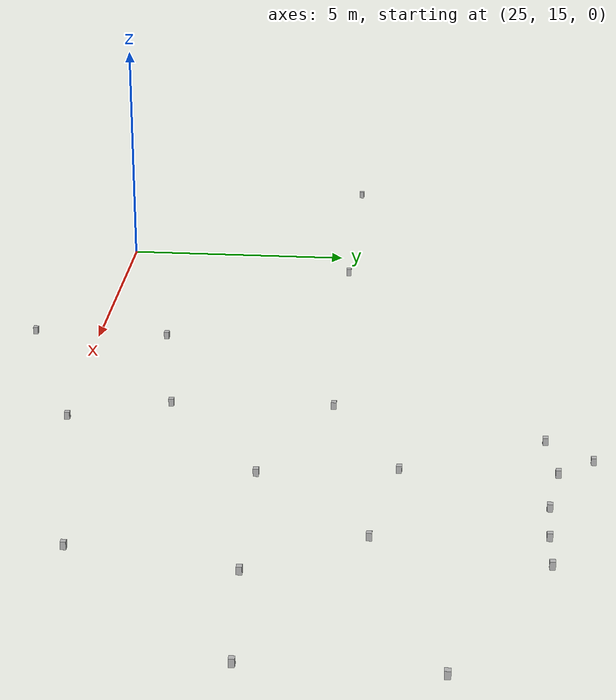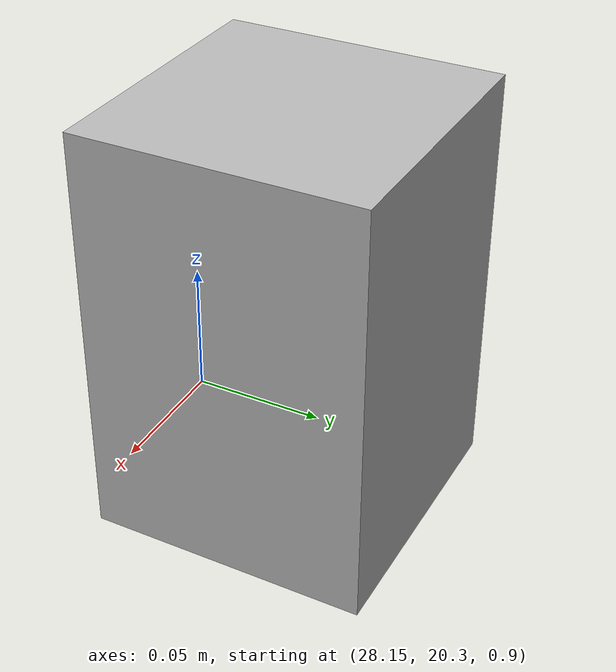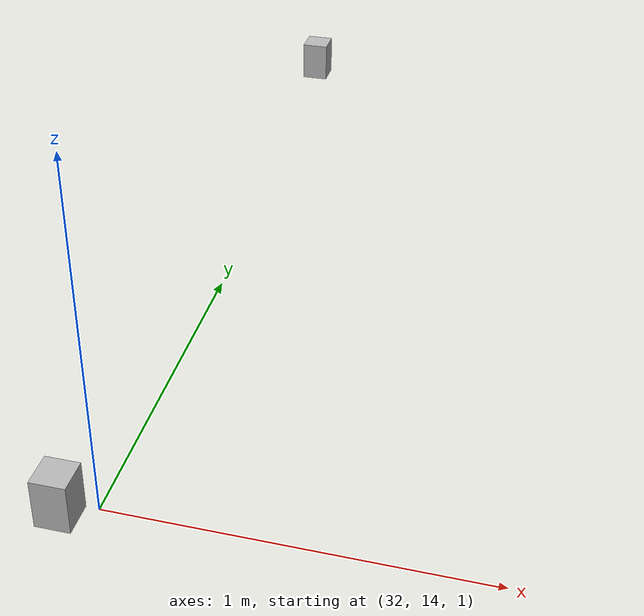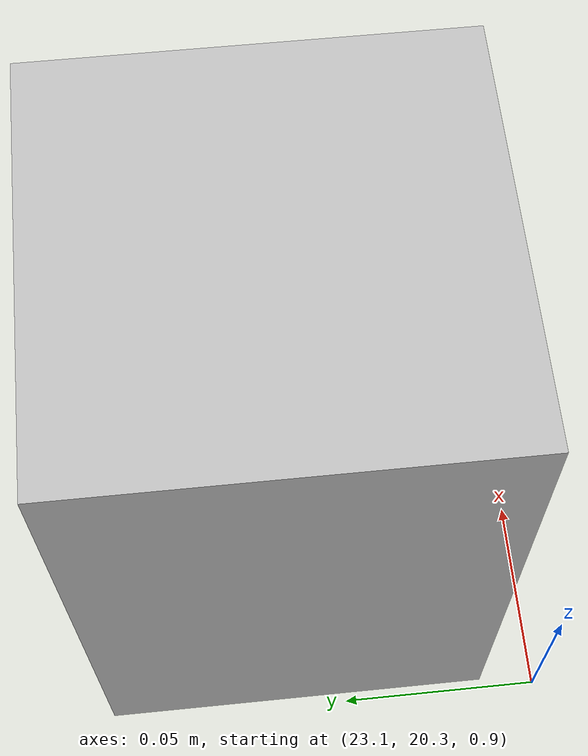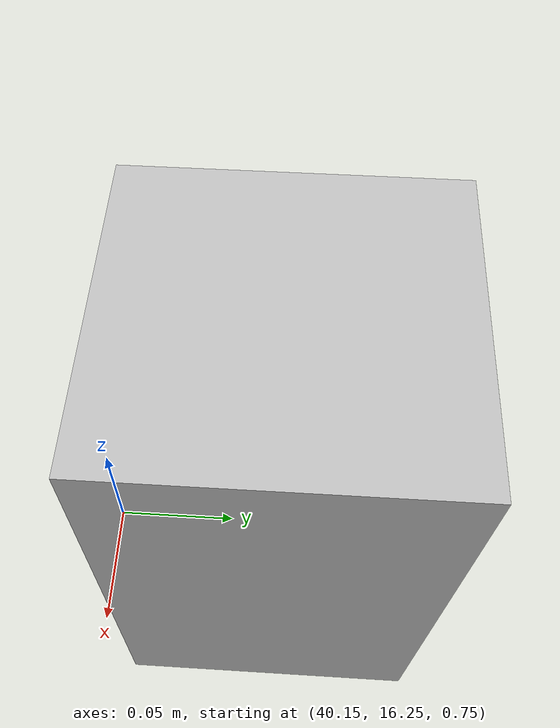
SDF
<sdf version="1.6">
 <world name="world">
  <model name="ground_plane">
   <static>1</static>
   <link name="link">
    <collision name="collision">
     <geometry><plane><normal>0 0 1</normal><size>100 100</size></plane></geometry>
     <surface><friction><ode><mu>100</mu><mu2>50</mu2></ode></friction></surface>
    </collision>
    <velocity_decay><linear>0</linear><angular>0</angular></velocity_decay>
   </link>
  </model>
  <physics name="default_physics" default="0" type="ode">
   <max_step_size>0.001</max_step_size>
   <real_time_factor>1</real_time_factor>
   <real_time_update_rate>1000</real_time_update_rate>
  </physics>
  <scene><ambient>0.4 0.4 0.4 1</ambient><background>0.7 0.7 0.7 1</background><shadows>1</shadows></scene>
  <gravity>0 0 -9.8</gravity>
  <magnetic_field>6e-06 2.3e-05 -4.2e-05</magnetic_field>
  <atmosphere type="adiabatic"/>
  <spherical_coordinates>
   <surface_model>EARTH_WGS84</surface_model>
   <latitude_deg>0</latitude_deg>
   <longitude_deg>0</longitude_deg>
   <elevation>0</elevation>
   <heading_deg>0</heading_deg>
  </spherical_coordinates>
  <light name="user_point_light_0" type="point">
   <pose>37.122 19.3882 1 0 -0 0</pose>
   <diffuse>0.5 0.5 0.5 1</diffuse>
   <specular>0.1 0.1 0.1 1</specular>
   <attenuation>
    <range>20</range>
    <constant>0.5</constant>
    <linear>0.01</linear>
    <quadratic>0.001</quadratic>
   </attenuation>
   <cast_shadows>0</cast_shadows>
   <direction>0 0 -1</direction>
  </light>
  <model name="tea_box_0">
   <link name="link">
    <pose>0 0 0.075 0 -0 0</pose>
    <inertial>
     <mass>0.39</mass>
     <inertia>
      <ixx>0.000264062</ixx>
      <ixy>0</ixy>
      <ixz>0</ixz>
      <iyy>0.000264062</iyy>
      <iyz>0</iyz>
      <izz>0.0001625</izz>
     </inertia>
    </inertial>
    <visual name="visual">
     <geometry><box><size>0.1 0.1 0.15</size></box></geometry>
     <material>
      <script>
       <uri>model://tea_box/materials/scripts</uri>
       <uri>model://tea_box/materials/textures</uri>
       <name>tea_pat</name>
      </script>
     </material>
    </visual>
    <collision name="collision"><geometry><box><size>0.1 0.1 0.15</size></box></geometry></collision>
   </link>
   <pose>37.3782 19.2551 0.774996 -1.6e-05 2e-06 -4.4e-05</pose>
  </model>
  <model name="tea_box_0_clone_clone_0">
   <link name="link">
    <pose>0 0 0.075 0 -0 0</pose>
    <inertial>
     <mass>0.39</mass>
     <inertia>
      <ixx>0.000264062</ixx>
      <ixy>0</ixy>
      <ixz>0</ixz>
      <iyy>0.000264062</iyy>
      <iyz>0</iyz>
      <izz>0.0001625</izz>
     </inertia>
    </inertial>
    <visual name="visual">
     <geometry><box><size>0.1 0.1 0.15</size></box></geometry>
     <material>
      <script>
       <uri>model://tea_box/materials/scripts</uri>
       <uri>model://tea_box/materials/textures</uri>
       <name>tea_pat</name>
      </script>
     </material>
    </visual>
    <collision name="collision"><geometry><box><size>0.1 0.1 0.15</size></box></geometry></collision>
   </link>
   <pose>28.1753 20.3532 0.890216 2e-05 -3.6e-05 -0.004426</pose>
  </model>
  <model name="tea_box_0_clone_clone_0_clone">
   <link name="link">
    <pose>0 0 0.075 0 -0 0</pose>
    <inertial>
     <mass>0.39</mass>
     <inertia>
      <ixx>0.000264062</ixx>
      <ixy>0</ixy>
      <ixz>0</ixz>
      <iyy>0.000264062</iyy>
      <iyz>0</iyz>
      <izz>0.0001625</izz>
     </inertia>
    </inertial>
    <visual name="visual">
     <geometry><box><size>0.1 0.1 0.15</size></box></geometry>
     <material>
      <script>
       <uri>model://tea_box/materials/scripts</uri>
       <uri>model://tea_box/materials/textures</uri>
       <name>tea_pat</name>
      </script>
     </material>
    </visual>
    <collision name="collision"><geometry><box><size>0.1 0.1 0.15</size></box></geometry></collision>
   </link>
   <pose>23.155 20.3624 0.890217 -1e-05 1e-05 -0.000786</pose>
  </model>
  <model name="tea_box_1">
   <link name="link">
    <pose>0 0 0.075 0 -0 0</pose>
    <inertial>
     <mass>0.39</mass>
     <inertia>
      <ixx>0.000264062</ixx>
      <ixy>0</ixy>
      <ixz>0</ixz>
      <iyy>0.000264062</iyy>
      <iyz>0</iyz>
      <izz>0.0001625</izz>
     </inertia>
    </inertial>
    <visual name="visual">
     <geometry><box><size>0.1 0.1 0.15</size></box></geometry>
     <material>
      <script>
       <uri>model://tea_box/materials/scripts</uri>
       <uri>model://tea_box/materials/textures</uri>
       <name>tea_pat</name>
      </script>
     </material>
    </visual>
    <collision name="collision"><geometry><box><size>0.1 0.1 0.15</size></box></geometry></collision>
   </link>
   <pose>31.8584 14.0561 0.884765 -0.014692 -5e-06 0.000756</pose>
  </model>
  <model name="tea_box_1_clone">
   <link name="link">
    <pose>0 0 0.075 0 -0 0</pose>
    <inertial>
     <mass>0.39</mass>
     <inertia>
      <ixx>0.000264062</ixx>
      <ixy>0</ixy>
      <ixz>0</ixz>
      <iyy>0.000264062</iyy>
      <iyz>0</iyz>
      <izz>0.0001625</izz>
     </inertia>
    </inertial>
    <visual name="visual">
     <geometry><box><size>0.1 0.1 0.15</size></box></geometry>
     <material>
      <script>
       <uri>model://tea_box/materials/scripts</uri>
       <uri>model://tea_box/materials/textures</uri>
       <name>tea_pat</name>
      </script>
     </material>
    </visual>
    <collision name="collision"><geometry><box><size>0.1 0.1 0.15</size></box></geometry></collision>
   </link>
   <pose>31.8687 16.8046 0.884729 -0.014726 -3e-06 -0.000762</pose>
  </model>
  <model name="tea_box_1_clone_0">
   <link name="link">
    <pose>0 0 0.075 0 -0 0</pose>
    <inertial>
     <mass>0.39</mass>
     <inertia>
      <ixx>0.000264062</ixx>
      <ixy>0</ixy>
      <ixz>0</ixz>
      <iyy>0.000264062</iyy>
      <iyz>0</iyz>
      <izz>0.0001625</izz>
     </inertia>
    </inertial>
    <visual name="visual">
     <geometry><box><size>0.1 0.1 0.15</size></box></geometry>
     <material>
      <script>
       <uri>model://tea_box/materials/scripts</uri>
       <uri>model://tea_box/materials/textures</uri>
       <name>tea_pat</name>
      </script>
     </material>
    </visual>
    <collision name="collision"><geometry><box><size>0.1 0.1 0.15</size></box></geometry></collision>
   </link>
   <pose>37.2268 24.6506 0.909 6e-06 1e-06 1.8e-05</pose>
  </model>
  <model name="tea_box_1_clone_1">
   <link name="link">
    <pose>0 0 0.075 0 -0 0</pose>
    <inertial>
     <mass>0.39</mass>
     <inertia>
      <ixx>0.000264062</ixx>
      <ixy>0</ixy>
      <ixz>0</ixz>
      <iyy>0.000264062</iyy>
      <iyz>0</iyz>
      <izz>0.0001625</izz>
     </inertia>
    </inertial>
    <visual name="visual">
     <geometry><box><size>0.1 0.1 0.15</size></box></geometry>
     <material>
      <script>
       <uri>model://tea_box/materials/scripts</uri>
       <uri>model://tea_box/materials/textures</uri>
       <name>tea_pat</name>
      </script>
     </material>
    </visual>
    <collision name="collision"><geometry><box><size>0.1 0.1 0.15</size></box></geometry></collision>
   </link>
   <pose>35 25.4489 0 -5e-06 -1.6e-05 -2e-06</pose>
  </model>
  <model name="tea_box_1_clone_0_clone">
   <link name="link">
    <pose>0 0 0.075 0 -0 0</pose>
    <inertial>
     <mass>0.39</mass>
     <inertia>
      <ixx>0.000264062</ixx>
      <ixy>0</ixy>
      <ixz>0</ixz>
      <iyy>0.000264062</iyy>
      <iyz>0</iyz>
      <izz>0.0001625</izz>
     </inertia>
    </inertial>
    <visual name="visual">
     <geometry><box><size>0.1 0.1 0.15</size></box></geometry>
     <material>
      <script>
       <uri>model://tea_box/materials/scripts</uri>
       <uri>model://tea_box/materials/textures</uri>
       <name>tea_pat</name>
      </script>
     </material>
    </visual>
    <collision name="collision"><geometry><box><size>0.1 0.1 0.15</size></box></geometry></collision>
   </link>
   <pose>36.0009 24.4606 0.909 -1e-06 4e-06 -0.000123</pose>
  </model>
  <model name="tea_box_1_clone_0_clone_0">
   <link name="link">
    <pose>0 0 0.075 0 -0 0</pose>
    <inertial>
     <mass>0.39</mass>
     <inertia>
      <ixx>0.000264062</ixx>
      <ixy>0</ixy>
      <ixz>0</ixz>
      <iyy>0.000264062</iyy>
      <iyz>0</iyz>
      <izz>0.0001625</izz>
     </inertia>
    </inertial>
    <visual name="visual">
     <geometry><box><size>0.1 0.1 0.15</size></box></geometry>
     <material>
      <script>
       <uri>model://tea_box/materials/scripts</uri>
       <uri>model://tea_box/materials/textures</uri>
       <name>tea_pat</name>
      </script>
     </material>
    </visual>
    <collision name="collision"><geometry><box><size>0.1 0.1 0.15</size></box></geometry></collision>
   </link>
   <pose>38.4516 24.4582 0.909 -1e-06 4e-06 -0.000123</pose>
  </model>
  <model name="tea_box_1_clone_0_clone_1">
   <link name="link">
    <pose>0 0 0.075 0 -0 0</pose>
    <inertial>
     <mass>0.39</mass>
     <inertia>
      <ixx>0.000264062</ixx>
      <ixy>0</ixy>
      <ixz>0</ixz>
      <iyy>0.000264062</iyy>
      <iyz>0</iyz>
      <izz>0.0001625</izz>
     </inertia>
    </inertial>
    <visual name="visual">
     <geometry><box><size>0.1 0.1 0.15</size></box></geometry>
     <material>
      <script>
       <uri>model://tea_box/materials/scripts</uri>
       <uri>model://tea_box/materials/textures</uri>
       <name>tea_pat</name>
      </script>
     </material>
    </visual>
    <collision name="collision"><geometry><box><size>0.1 0.1 0.15</size></box></geometry></collision>
   </link>
   <pose>39.4439 24.4207 0.909 -1e-06 4e-06 -0.000123</pose>
  </model>
  <model name="tea_box_1_clone_0_clone_2">
   <link name="link">
    <pose>0 0 0.075 0 -0 0</pose>
    <inertial>
     <mass>0.39</mass>
     <inertia>
      <ixx>0.000264062</ixx>
      <ixy>0</ixy>
      <ixz>0</ixz>
      <iyy>0.000264062</iyy>
      <iyz>0</iyz>
      <izz>0.0001625</izz>
     </inertia>
    </inertial>
    <visual name="visual">
     <geometry><box><size>0.1 0.1 0.15</size></box></geometry>
     <material>
      <script>
       <uri>model://tea_box/materials/scripts</uri>
       <uri>model://tea_box/materials/textures</uri>
       <name>tea_pat</name>
      </script>
     </material>
    </visual>
    <collision name="collision"><geometry><box><size>0.1 0.1 0.15</size></box></geometry></collision>
   </link>
   <pose>40.3473 24.4329 0.909 6e-06 1e-06 2.7e-05</pose>
  </model>
  <model name="tea_box_1_clone_0_clone_2_clone">
   <link name="link">
    <pose>0 0 0.075 0 -0 0</pose>
    <inertial>
     <mass>0.39</mass>
     <inertia>
      <ixx>0.000264062</ixx>
      <ixy>0</ixy>
      <ixz>0</ixz>
      <iyy>0.000264062</iyy>
      <iyz>0</iyz>
      <izz>0.0001625</izz>
     </inertia>
    </inertial>
    <visual name="visual">
     <geometry><box><size>0.1 0.1 0.15</size></box></geometry>
     <material>
      <script>
       <uri>model://tea_box/materials/scripts</uri>
       <uri>model://tea_box/materials/textures</uri>
       <name>tea_pat</name>
      </script>
     </material>
    </visual>
    <collision name="collision"><geometry><box><size>0.1 0.1 0.15</size></box></geometry></collision>
   </link>
   <pose>43.494 19.5521 0.886794 -1.5e-05 1e-06 -0.001157</pose>
  </model>
  <model name="tea_box_1_clone_0_clone_2_clone_clone">
   <link name="link">
    <pose>0 0 0.075 0 -0 0</pose>
    <inertial>
     <mass>0.39</mass>
     <inertia>
      <ixx>0.000264062</ixx>
      <ixy>0</ixy>
      <ixz>0</ixz>
      <iyy>0.000264062</iyy>
      <iyz>0</iyz>
      <izz>0.0001625</izz>
     </inertia>
    </inertial>
    <visual name="visual">
     <geometry><box><size>0.1 0.1 0.15</size></box></geometry>
     <material>
      <script>
       <uri>model://tea_box/materials/scripts</uri>
       <uri>model://tea_box/materials/textures</uri>
       <name>tea_pat</name>
      </script>
     </material>
    </visual>
    <collision name="collision"><geometry><box><size>0.1 0.1 0.15</size></box></geometry></collision>
   </link>
   <pose>43.5343 22.7781 0.886795 -1.4e-05 1.5e-05 0.013747</pose>
  </model>
  <model name="tea_box_0_clone">
   <link name="link">
    <pose>0 0 0.075 0 -0 0</pose>
    <inertial>
     <mass>0.39</mass>
     <inertia>
      <ixx>0.000264062</ixx>
      <ixy>0</ixy>
      <ixz>0</ixz>
      <iyy>0.000264062</iyy>
      <iyz>0</iyz>
      <izz>0.0001625</izz>
     </inertia>
    </inertial>
    <visual name="visual">
     <geometry><box><size>0.1 0.1 0.15</size></box></geometry>
     <material>
      <script>
       <uri>model://tea_box/materials/scripts</uri>
       <uri>model://tea_box/materials/textures</uri>
       <name>tea_pat</name>
      </script>
     </material>
    </visual>
    <collision name="collision"><geometry><box><size>0.1 0.1 0.15</size></box></geometry></collision>
   </link>
   <pose>34.6 20.4636 0.775 -1.6e-05 2e-06 -4.4e-05</pose>
  </model>
  <model name="tea_box_0_clone_0">
   <link name="link">
    <pose>0 0 0.075 0 -0 0</pose>
    <inertial>
     <mass>0.39</mass>
     <inertia>
      <ixx>0.000264062</ixx>
      <ixy>0</ixy>
      <ixz>0</ixz>
      <iyy>0.000264062</iyy>
      <iyz>0</iyz>
      <izz>0.0001625</izz>
     </inertia>
    </inertial>
    <visual name="visual">
     <geometry><box><size>0.1 0.1 0.15</size></box></geometry>
     <material>
      <script>
       <uri>model://tea_box/materials/scripts</uri>
       <uri>model://tea_box/materials/textures</uri>
       <name>tea_pat</name>
      </script>
     </material>
    </visual>
    <collision name="collision"><geometry><box><size>0.1 0.1 0.15</size></box></geometry></collision>
   </link>
   <pose>37.0526 21.8128 0.775 -1.6e-05 2e-06 -4.4e-05</pose>
  </model>
  <model name="tea_box_0_clone_1">
   <link name="link">
    <pose>0 0 0.075 0 -0 0</pose>
    <inertial>
     <mass>0.39</mass>
     <inertia>
      <ixx>0.000264062</ixx>
      <ixy>0</ixy>
      <ixz>0</ixz>
      <iyy>0.000264062</iyy>
      <iyz>0</iyz>
      <izz>0.0001625</izz>
     </inertia>
    </inertial>
    <visual name="visual">
     <geometry><box><size>0.1 0.1 0.15</size></box></geometry>
     <material>
      <script>
       <uri>model://tea_box/materials/scripts</uri>
       <uri>model://tea_box/materials/textures</uri>
       <name>tea_pat</name>
      </script>
     </material>
    </visual>
    <collision name="collision"><geometry><box><size>0.1 0.1 0.15</size></box></geometry></collision>
   </link>
   <pose>39.4557 21.3989 0.775 -1.6e-05 2e-06 -4.4e-05</pose>
  </model>
  <model name="tea_box_0_clone_clone">
   <link name="link">
    <pose>0 0 0.075 0 -0 0</pose>
    <inertial>
     <mass>0.39</mass>
     <inertia>
      <ixx>0.000264062</ixx>
      <ixy>0</ixy>
      <ixz>0</ixz>
      <iyy>0.000264062</iyy>
      <iyz>0</iyz>
      <izz>0.0001625</izz>
     </inertia>
    </inertial>
    <visual name="visual">
     <geometry><box><size>0.1 0.1 0.15</size></box></geometry>
     <material>
      <script>
       <uri>model://tea_box/materials/scripts</uri>
       <uri>model://tea_box/materials/textures</uri>
       <name>tea_pat</name>
      </script>
     </material>
    </visual>
    <collision name="collision"><geometry><box><size>0.1 0.1 0.15</size></box></geometry></collision>
   </link>
   <pose>34.7152 17.3258 0.775 -1.6e-05 2e-06 -4.4e-05</pose>
  </model>
  <model name="tea_box_0_clone_clone_1">
   <link name="link">
    <pose>0 0 0.075 0 -0 0</pose>
    <inertial>
     <mass>0.39</mass>
     <inertia>
      <ixx>0.000264062</ixx>
      <ixy>0</ixy>
      <ixz>0</ixz>
      <iyy>0.000264062</iyy>
      <iyz>0</iyz>
      <izz>0.0001625</izz>
     </inertia>
    </inertial>
    <visual name="visual">
     <geometry><box><size>0.1 0.1 0.15</size></box></geometry>
     <material>
      <script>
       <uri>model://tea_box/materials/scripts</uri>
       <uri>model://tea_box/materials/textures</uri>
       <name>tea_pat</name>
      </script>
     </material>
    </visual>
    <collision name="collision"><geometry><box><size>0.1 0.1 0.15</size></box></geometry></collision>
   </link>
   <pose>35.5435 15.4541 0.826362 -1.6e-05 2e-06 -4.4e-05</pose>
  </model>
  <model name="tea_box_0_clone_clone_2">
   <link name="link">
    <pose>0 0 0.075 0 -0 0</pose>
    <inertial>
     <mass>0.39</mass>
     <inertia>
      <ixx>0.000264062</ixx>
      <ixy>0</ixy>
      <ixz>0</ixz>
      <iyy>0.000264062</iyy>
      <iyz>0</iyz>
      <izz>0.0001625</izz>
     </inertia>
    </inertial>
    <visual name="visual">
     <geometry><box><size>0.1 0.1 0.15</size></box></geometry>
     <material>
      <script>
       <uri>model://tea_box/materials/scripts</uri>
       <uri>model://tea_box/materials/textures</uri>
       <name>tea_pat</name>
      </script>
     </material>
    </visual>
    <collision name="collision"><geometry><box><size>0.1 0.1 0.15</size></box></geometry></collision>
   </link>
   <pose>40.7138 19.3414 0.775 -1.6e-05 2e-06 -4.4e-05</pose>
  </model>
  <model name="tea_box_0_clone_clone_2_clone">
   <link name="link">
    <pose>0 0 0.075 0 -0 0</pose>
    <inertial>
     <mass>0.39</mass>
     <inertia>
      <ixx>0.000264062</ixx>
      <ixy>0</ixy>
      <ixz>0</ixz>
      <iyy>0.000264062</iyy>
      <iyz>0</iyz>
      <izz>0.0001625</izz>
     </inertia>
    </inertial>
    <visual name="visual">
     <geometry><box><size>0.1 0.1 0.15</size></box></geometry>
     <material>
      <script>
       <uri>model://tea_box/materials/scripts</uri>
       <uri>model://tea_box/materials/textures</uri>
       <name>tea_pat</name>
      </script>
     </material>
    </visual>
    <collision name="collision"><geometry><box><size>0.1 0.1 0.15</size></box></geometry></collision>
   </link>
   <pose>40.1755 16.319 0.774998 -1.6e-05 2e-06 -4.4e-05</pose>
  </model>
  <light name="user_point_light_1" type="point">
   <pose>40.3534 16.0101 1 0 -0 0</pose>
   <diffuse>0.5 0.5 0.5 1</diffuse>
   <specular>0.1 0.1 0.1 1</specular>
   <attenuation>
    <range>20</range>
    <constant>0.5</constant>
    <linear>0.01</linear>
    <quadratic>0.001</quadratic>
   </attenuation>
   <cast_shadows>0</cast_shadows>
   <direction>0 0 -1</direction>
  </light>
 </world>
</sdf>
